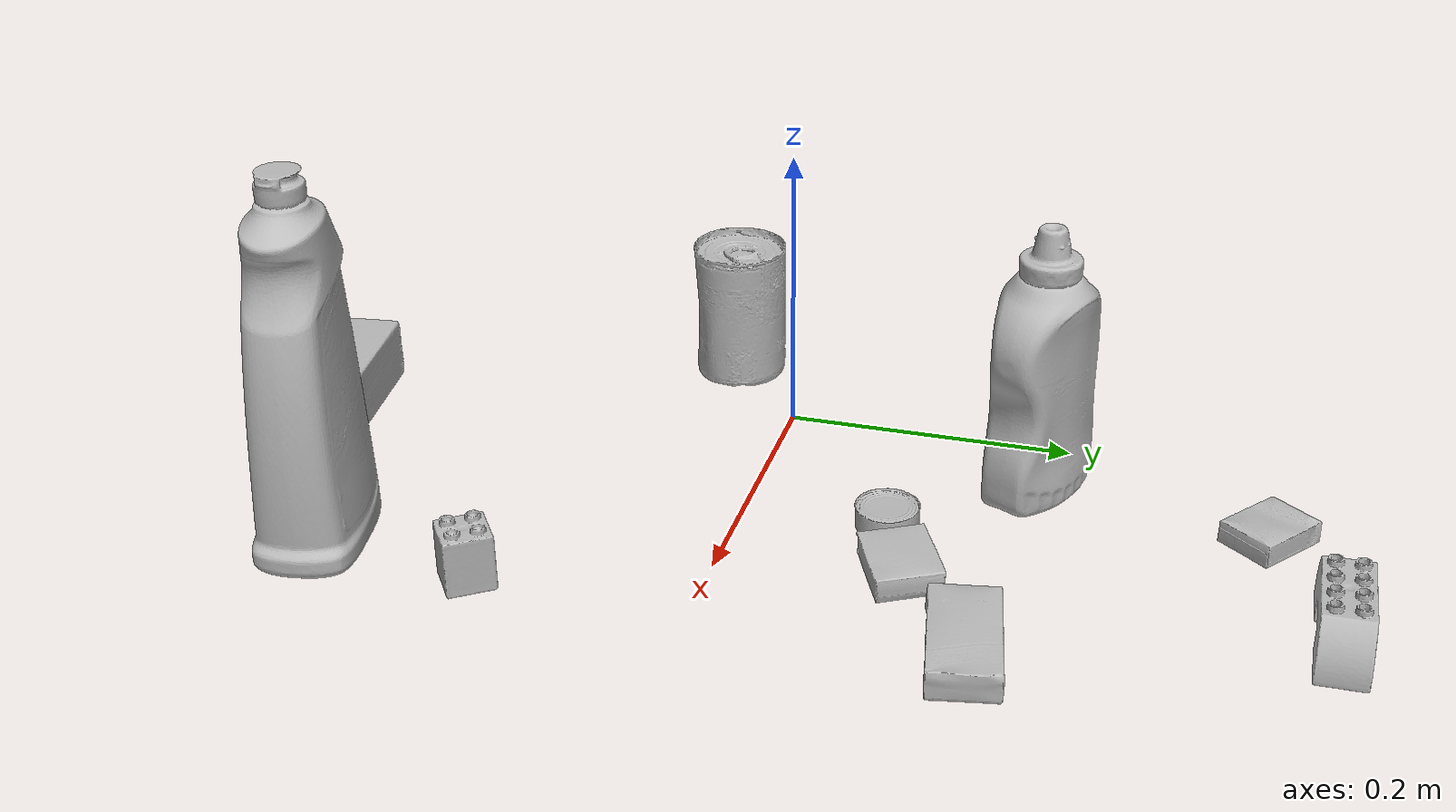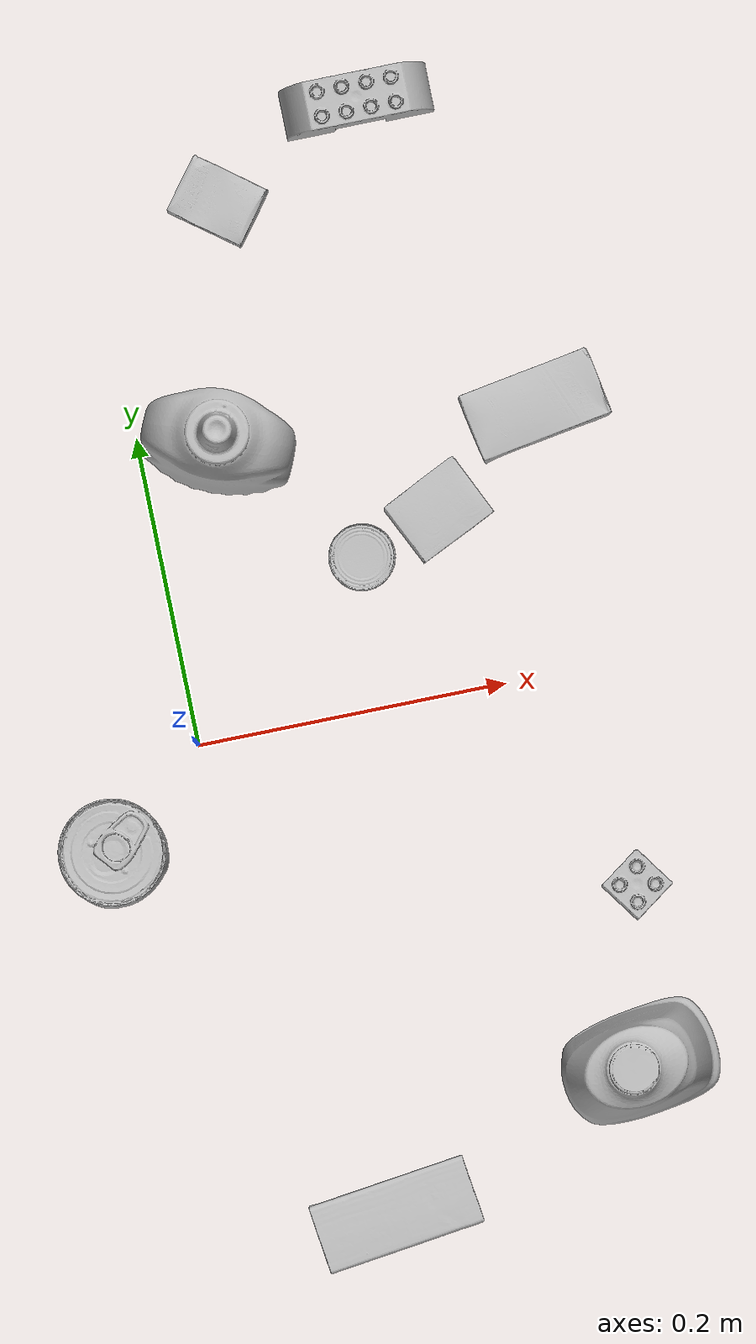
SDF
<sdf version="1.4">
  <world name="default">
    <light name="light1" type="point">
      <pose>0 0 1 0 0 0</pose>
      <diffuse>3 3 3 1</diffuse>
      <specular>3 3 3 1</specular>
    </light>
    <light name="light2" type="point">
      <pose>0 0.5 2 0 0 0</pose>
      <diffuse>1 1 1 1</diffuse>
      <specular>1 1 1 1</specular>
    </light>
    <light name="light3" type="point">
      <pose>0 0.5 2 0 0 0</pose>
      <diffuse>3 3 3 1</diffuse>
      <specular>3 3 3 1</specular>
    </light>
    <scene>
      <ambient>0.7 0.7 0.7</ambient>
    </scene>
    <model name="bottle1">
      <link name="link_bottle1">
        <collision name="default">
          <geometry>
            <mesh>
              <uri>model://bleach_cleanser/collision_meshes/collision.obj</uri>
              <scale>1.0 1.0 1.0</scale>
            </mesh>
          </geometry>
          <surface>
            <friction>
              <ode>
                <mu>0.5</mu>
                <mu2>0.5</mu2>
              </ode>
            </friction>
          <contact>
        <ode>
            <max_vel>0</max_vel>
            <min_depth>0.0001</min_depth>
            <kp>1e8</kp>
        </ode>
    </contact></surface>
        </collision>
        <visual name="default">
          <geometry>
            <mesh>
              <uri>model://bleach_cleanser/visual_meshes/visual.dae</uri>
              <scale>1.0 1.0 1.0</scale>
            </mesh>
          </geometry>
        </visual>
        <inertial>
          <mass>0.7954697608947754</mass>
          <pose>0.00012193184375064448 0.0037838825955986977 -0.02442161552608013 -0.0738167061583634 0.000420116841178447 -0.006875049257496471</pose>
          <inertia>
            <ixx>0.003871667</ixx>
            <iyy>0.0036078263</iyy>
            <izz>0.00066195446</izz>
            <ixy>0</ixy>
            <ixz>0</ixz>
            <iyz>0</iyz>
          </inertia>
        </inertial>
      </link>
      <pose>0.23410412669181824 -0.2535368502140045 0.12578418850898743 -0.00019952204601449237 1.650367388086079e-05 1.7290095777547585</pose>
    </model>
    <model name="bottle2">
      <link name="link_bottle2">
        <collision name="default">
          <geometry>
            <mesh>
              <uri>model://mustard_bottle/collision_meshes/collision.obj</uri>
              <scale>1.0 1.0 1.0</scale>
            </mesh>
          </geometry>
          <surface>
            <friction>
              <ode>
                <mu>0.5</mu>
                <mu2>0.5</mu2>
              </ode>
            </friction>
          <contact>
        <ode>
            <max_vel>0</max_vel>
            <min_depth>0.0001</min_depth>
            <kp>1e8</kp>
        </ode>
    </contact></surface>
        </collision>
        <visual name="default">
          <geometry>
            <mesh>
              <uri>model://mustard_bottle/visual_meshes/visual.dae</uri>
              <scale>1.0 1.0 1.0</scale>
            </mesh>
          </geometry>
        </visual>
        <inertial>
          <mass>0.5118113160133362</mass>
          <pose>0.0005032453336752951 -0.00015647397958673537 -0.017475785687565804 0.0004182313596805905 0.000946575919178121 0.024853765212265823</pose>
          <inertia>
            <ixx>0.00142123</ixx>
            <iyy>0.0012470091</iyy>
            <izz>0.0003745659</izz>
            <ixy>0</ixy>
            <ixz>0</ixz>
            <iyz>0</iyz>
          </inertia>
        </inertial>
      </link>
      <pose>0.051731664687395096 0.18342986702919006 0.09583092480897903 -0.012050930989204586 -0.004888924408025488 -1.9846347836835154</pose>
    </model>
    <model name="toy1">
      <link name="link_toy1">
        <collision name="default">
          <geometry>
            <mesh>
              <uri>model://b_lego_duplo/collision_meshes/collision.obj</uri>
              <scale>1.0 1.0 1.0</scale>
            </mesh>
          </geometry>
          <surface>
            <friction>
              <ode>
                <mu>0.5</mu>
                <mu2>0.5</mu2>
              </ode>
            </friction>
          <contact>
        <ode>
            <max_vel>0</max_vel>
            <min_depth>0.0001</min_depth>
            <kp>1e8</kp>
        </ode>
    </contact></surface>
        </collision>
        <visual name="default">
          <geometry>
            <mesh>
              <uri>model://b_lego_duplo/visual_meshes/visual.dae</uri>
              <scale>1.0 1.0 1.0</scale>
            </mesh>
          </geometry>
        </visual>
        <inertial>
          <mass>0.04622781649231911</mass>
          <pose>-0.00011053043272113428 -9.152668098977301e-06 0.0019294294761493802 -0.037494565787594906 -0.026354503997733224 0.45188645636516256</pose>
          <inertia>
            <ixx>9.46087e-06</ixx>
            <iyy>9.524471e-06</iyy>
            <izz>8.429326e-06</izz>
            <ixy>0</ixy>
            <ixz>0</ixz>
            <iyz>0</iyz>
          </inertia>
        </inertial>
      </link>
      <pose>0.25566813349723816 -0.14231927692890167 0.021814998239278793 -8.203294819820826e-07 2.599854085618333e-07 0.614909963011204</pose>
    </model>
    <model name="toy2">
      <link name="link_toy2">
        <collision name="default">
          <geometry>
            <mesh>
              <uri>model://e_lego_duplo/collision_meshes/collision.obj</uri>
              <scale>1.0 1.0 1.0</scale>
            </mesh>
          </geometry>
          <surface>
            <friction>
              <ode>
                <mu>0.5</mu>
                <mu2>0.5</mu2>
              </ode>
            </friction>
          <contact>
        <ode>
            <max_vel>0</max_vel>
            <min_depth>0.0001</min_depth>
            <kp>1e8</kp>
        </ode>
    </contact></surface>
        </collision>
        <visual name="default">
          <geometry>
            <mesh>
              <uri>model://e_lego_duplo/visual_meshes/visual.dae</uri>
              <scale>1.0 1.0 1.0</scale>
            </mesh>
          </geometry>
        </visual>
        <inertial>
          <mass>0.08809097856283188</mass>
          <pose>0.00032560486579313874 0.00023485404381062835 0.0019521467620506883 -0.022567425824888195 -6.82459351116558e-05 -0.007625145117383363</pose>
          <inertia>
            <ixx>1.836988e-05</ixx>
            <iyy>7.539474e-05</iyy>
            <izz>7.34193e-05</izz>
            <ixy>0</ixy>
            <ixz>0</ixz>
            <iyz>0</iyz>
          </inertia>
        </inertial>
      </link>
      <pose>0.17995576560497284 0.38319140672683716 0.021808994933962822 -3.4083120713620406e-07 -2.183352040488511e-08 -3.1365126067615274</pose>
    </model>
    <model name="can1">
      <link name="link_can1">
        <collision name="default">
          <geometry>
            <mesh>
              <uri>model://tomato_soup_can/collision_meshes/collision.obj</uri>
              <scale>1.0 1.0 1.0</scale>
            </mesh>
          </geometry>
          <surface>
            <friction>
              <ode>
                <mu>0.5</mu>
                <mu2>0.5</mu2>
              </ode>
            </friction>
          <contact>
        <ode>
            <max_vel>0</max_vel>
            <min_depth>0.0001</min_depth>
            <kp>1e8</kp>
        </ode>
    </contact></surface>
        </collision>
        <visual name="default">
          <geometry>
            <mesh>
              <uri>model://tomato_soup_can/visual_meshes/visual.dae</uri>
              <scale>1.0 1.0 1.0</scale>
            </mesh>
          </geometry>
        </visual>
        <inertial>
          <mass>0.4347945749759674</mass>
          <pose>0.0001265227037947625 0.00010805525380419567 -0.0017973979702219367 0.007020064127759274 0.0004229940757469139 -0.009903323281130803</pose>
          <inertia>
            <ixx>0.00047671542</ixx>
            <iyy>0.00047396024</iyy>
            <izz>0.00024707714</izz>
            <ixy>0</ixy>
            <ixz>0</ixz>
            <iyz>0</iyz>
          </inertia>
        </inertial>
      </link>
      <pose>-0.0649050921201706 -0.05821593478322029 0.05127401277422905 -1.806253774909763e-07 -8.184971688623008e-08 1.9969584226474806</pose>
    </model>
    <model name="can2">
      <link name="link_can2">
        <collision name="default">
          <geometry>
            <mesh>
              <uri>model://tuna_fish_can/collision_meshes/collision.obj</uri>
              <scale>0.5 0.5 0.5</scale>
            </mesh>
          </geometry>
          <surface>
            <friction>
              <ode>
                <mu>0.5</mu>
                <mu2>0.5</mu2>
              </ode>
            </friction>
          <contact>
        <ode>
            <max_vel>0</max_vel>
            <min_depth>0.0001</min_depth>
            <kp>1e8</kp>
        </ode>
    </contact></surface>
        </collision>
        <visual name="default">
          <geometry>
            <mesh>
              <uri>model://tuna_fish_can/visual_meshes/visual.dae</uri>
              <scale>0.5 0.5 0.5</scale>
            </mesh>
          </geometry>
        </visual>
        <inertial>
          <mass>0.02951119653880596</mass>
          <pose>-2.0361847418826073e-05 -7.256335720740026e-06 -0.0005269026733003557 -0.0017944763161136105 0.00017161533088142807 0.2405366956082085</pose>
          <inertia>
            <ixx>3.989958e-06</ixx>
            <iyy>3.9733272e-06</iyy>
            <izz>6.827389e-06</izz>
            <ixy>0</ixy>
            <ixz>0</ixz>
            <iyz>0</iyz>
          </inertia>
        </inertial>
      </link>
      <pose>0.1259293109178543 0.0965537577867508 0.008519995957612991 -5.197752665233281e-08 -1.7171502169579338e-08 1.4596919222011033</pose>
    </model>
    <model name="box1">
      <link name="link_box1">
        <collision name="default">
          <geometry>
            <mesh>
              <uri>model://sugar_box/collision_meshes/collision.obj</uri>
              <scale>0.5 0.5 0.5</scale>
            </mesh>
          </geometry>
          <surface>
            <friction>
              <ode>
                <mu>0.5</mu>
                <mu2>0.5</mu2>
              </ode>
            </friction>
          <contact>
        <ode>
            <max_vel>0</max_vel>
            <min_depth>0.0001</min_depth>
            <kp>1e8</kp>
        </ode>
    </contact></surface>
        </collision>
        <visual name="default">
          <geometry>
            <mesh>
              <uri>model://sugar_box/visual_meshes/visual.dae</uri>
              <scale>0.5 0.5 0.5</scale>
            </mesh>
          </geometry>
        </visual>
        <inertial>
          <mass>0.10932230949401855</mass>
          <pose>0.0005171863595023751 1.924554817378521e-05 -0.00018182402709499002 -0.00040462630024242077 0.0010506636385781449 0.0026153787888990553</pose>
          <inertia>
            <ixx>2.277176e-05</ixx>
            <iyy>7.3603005e-05</iyy>
            <izz>8.811158e-05</izz>
            <ixy>0</ixy>
            <ixz>0</ixz>
            <iyz>0</iyz>
          </inertia>
        </inertial>
      </link>
      <pose>0.2531124949455261 0.1697455197572708 0.011399304494261742 0.0007744781095027905 -0.023432964111194478 -2.974050553937175</pose>
    </model>
    <model name="box2">
      <link name="link_box2">
        <collision name="default">
          <geometry>
            <mesh>
              <uri>model://pudding_box/collision_meshes/collision.obj</uri>
              <scale>0.5 0.5 0.5</scale>
            </mesh>
          </geometry>
          <surface>
            <friction>
              <ode>
                <mu>0.5</mu>
                <mu2>0.5</mu2>
              </ode>
            </friction>
          <contact>
        <ode>
            <max_vel>0</max_vel>
            <min_depth>0.0001</min_depth>
            <kp>1e8</kp>
        </ode>
    </contact></surface>
        </collision>
        <visual name="default">
          <geometry>
            <mesh>
              <uri>model://pudding_box/visual_meshes/visual.dae</uri>
              <scale>0.5 0.5 0.5</scale>
            </mesh>
          </geometry>
        </visual>
        <inertial>
          <mass>0.061322033405303955</mass>
          <pose>0.00024474109522998333 0.00040339428232982755 -0.0002594413817860186 0.0052131013423229325 -0.006603797777692156 0.020079823300565562</pose>
          <inertia>
            <ixx>1.733035e-05</ixx>
            <iyy>1.1659984e-05</iyy>
            <izz>2.559279e-05</izz>
            <ixy>0</ixy>
            <ixz>0</ixz>
            <iyz>0</iyz>
          </inertia>
        </inertial>
      </link>
      <pose>0.17971675097942352 0.11644835770130157 0.009862903505563736 0.02234851898073696 -0.011391659198996769 2.016425630172933</pose>
    </model>
    <model name="box3">
      <link name="link_box3">
        <collision name="default">
          <geometry>
            <mesh>
              <uri>model://cracker_box/collision_meshes/collision.obj</uri>
              <scale>0.25 0.25 0.25</scale>
            </mesh>
          </geometry>
          <surface>
            <friction>
              <ode>
                <mu>0.5</mu>
                <mu2>0.5</mu2>
              </ode>
            </friction>
          <contact>
        <ode>
            <max_vel>0</max_vel>
            <min_depth>0.0001</min_depth>
            <kp>1e8</kp>
        </ode>
    </contact></surface>
        </collision>
        <visual name="default">
          <geometry>
            <mesh>
              <uri>model://cracker_box/visual_meshes/visual.dae</uri>
              <scale>0.25 0.25 0.25</scale>
            </mesh>
          </geometry>
        </visual>
        <inertial>
          <mass>0.05027599632740021</mass>
          <pose>0.00023660380975343287 6.358561222441494e-05 -0.00042573834070935845 -0.0003162076618733006 -0.011106490531610344 0.00254679570085012</pose>
          <inertia>
            <ixx>7.992481e-06</ixx>
            <iyy>1.3197154e-05</iyy>
            <izz>1.8833553e-05</izz>
            <ixy>0</ixy>
            <ixz>0</ixz>
            <iyz>0</iyz>
          </inertia>
        </inertial>
      </link>
      <pose>0.08084999769926071 0.33778172731399536 0.009120452217757702 -0.011787987062495188 -0.007367225206340382 -0.6536795580812702</pose>
    </model>
    <model name="box4">
      <link name="link_box4">
        <collision name="default">
          <geometry>
            <mesh>
              <uri>model://wood_block/collision_meshes/collision.obj</uri>
              <scale>0.5 0.5 0.5</scale>
            </mesh>
          </geometry>
          <surface>
            <friction>
              <ode>
                <mu>0.5</mu>
                <mu2>0.5</mu2>
              </ode>
            </friction>
          <contact>
        <ode>
            <max_vel>0</max_vel>
            <min_depth>0.0001</min_depth>
            <kp>1e8</kp>
        </ode>
    </contact></surface>
        </collision>
        <visual name="default">
          <geometry>
            <mesh>
              <uri>model://wood_block/visual_meshes/visual.dae</uri>
              <scale>0.5 0.5 0.5</scale>
            </mesh>
          </geometry>
        </visual>
        <inertial>
          <mass>0.30035653710365295</mass>
          <pose>-2.9066577553749084e-06 -0.000285404734313488 0.00013204291462898254 -0.05221128362191582 -0.005192695718477931 -0.0068613783725326285</pose>
          <inertia>
            <ixx>0.00010048062</ixx>
            <iyy>0.00031741828</iyy>
            <izz>0.00031623102</izz>
            <ixy>0</ixy>
            <ixz>0</ixz>
            <iyz>0</iyz>
          </inertia>
        </inertial>
      </link>
      <pose>0.06440678983926773 -0.31673187017440796 0.022629257291555405 -0.005208534049664931 0.005718686911059336 -3.008186707062364</pose>
    </model>
  <physics type="ode">
      <max_contacts>50</max_contacts>
      <ode>
        <solver>
          <type>quick</type>
          <iters>75</iters>
        </solver>
        <constraints>
          <contact_max_correcting_vel>0</contact_max_correcting_vel>
          <contact_surface_layer>0</contact_surface_layer>
        </constraints>
      </ode>
    </physics></world>
</sdf>
